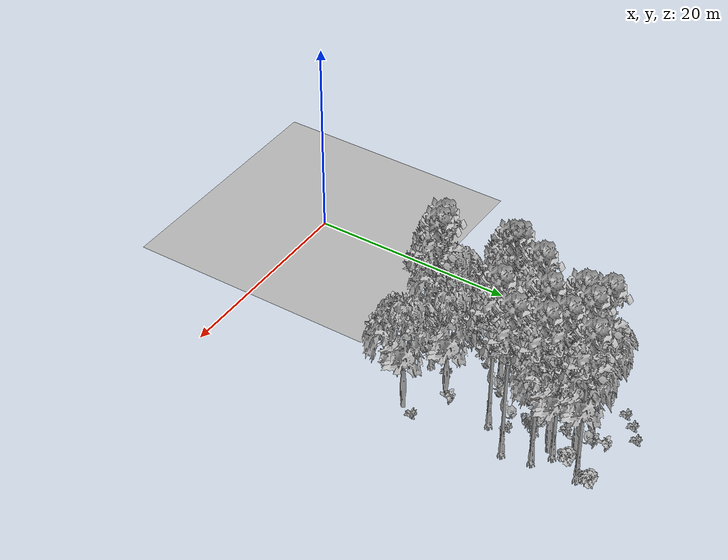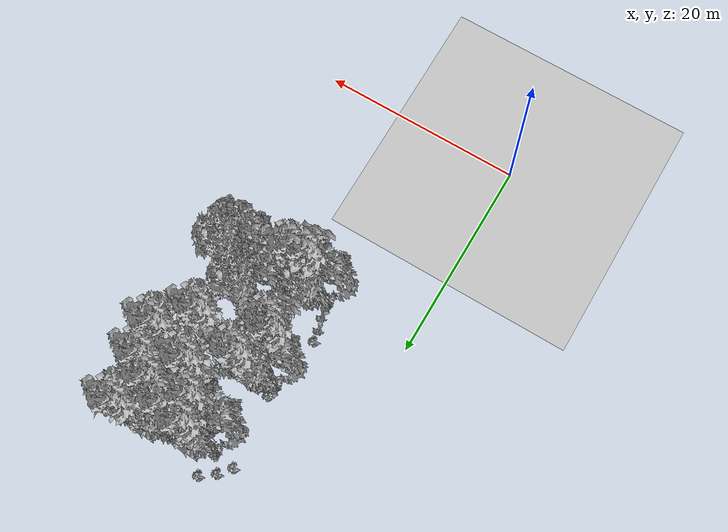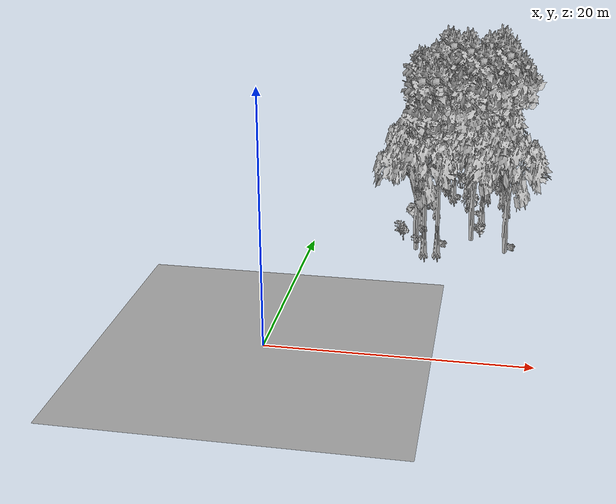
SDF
<sdf version="1.7">
 <world name="default">
  <model name="ground_plane">
   <static>1</static>
   <link name="link">
    <collision name="collision">
     <pose>-50 0 0 0 -0 0</pose>
     <geometry><plane><normal>0 0 1</normal><size>80 80</size></plane></geometry>
     <surface><contact><ode><min_depth>0.01</min_depth><max_vel>0</max_vel></ode></contact></surface>
    </collision>
    <visual name="grass">
     <cast_shadows>0</cast_shadows>
     <geometry>
      <mesh>
       <scale>0.46714285714285714 0.46714285714285714 0.1</scale>
       <uri>file://grass_plane/meshes/grass_plane.dae</uri>
      </mesh>
     </geometry>
    </visual>
   </link>
  </model>
  <model name="Tree 13">
   <static>1</static>
   <pose>9.448481958813034 19.72214087842748 0 1.57079 -0 0</pose>
   <link name="link">
    <collision name="collision">
     <geometry><mesh><scale>3.5 5 3.5</scale><uri>model://tree_2/meshes/tree_2.obj</uri></mesh></geometry>
    </collision>
    <visual name="visual">
     <geometry><mesh><scale>3.5 5 3.5</scale><uri>model://tree_2/meshes/tree_2.obj</uri></mesh></geometry>
    </visual>
   </link>
  </model>
  <model name="Tree 25">
   <static>1</static>
   <pose>15.556397853560355 34.013811529760744 0 1.57079 -0 0</pose>
   <link name="link">
    <collision name="collision">
     <geometry><mesh><scale>3.5 5 3.5</scale><uri>model://tree_9/meshes/tree_9.obj</uri></mesh></geometry>
    </collision>
    <visual name="visual">
     <geometry><mesh><scale>3.5 5 3.5</scale><uri>model://tree_9/meshes/tree_9.obj</uri></mesh></geometry>
    </visual>
   </link>
  </model>
  <model name="Tree 44">
   <static>1</static>
   <pose>10.714253786453092 28.930514521983653 0 1.57079 -0 0</pose>
   <link name="link">
    <collision name="collision">
     <geometry><mesh><scale>3.5 5 3.5</scale><uri>model://tree_9/meshes/tree_9.obj</uri></mesh></geometry>
    </collision>
    <visual name="visual">
     <geometry><mesh><scale>3.5 5 3.5</scale><uri>model://tree_9/meshes/tree_9.obj</uri></mesh></geometry>
    </visual>
   </link>
  </model>
  <model name="Tree 45">
   <static>1</static>
   <pose>15.191166597170394 27.550827886717457 0 1.57079 -0 0</pose>
   <link name="link">
    <collision name="collision">
     <geometry><mesh><scale>3.5 5 3.5</scale><uri>model://tree_9/meshes/tree_9.obj</uri></mesh></geometry>
    </collision>
    <visual name="visual">
     <geometry><mesh><scale>3.5 5 3.5</scale><uri>model://tree_9/meshes/tree_9.obj</uri></mesh></geometry>
    </visual>
   </link>
  </model>
  <model name="Tree 74">
   <static>1</static>
   <pose>17.08994189921639 32.8185801995964 0 1.57079 -0 0</pose>
   <link name="link">
    <collision name="collision">
     <geometry><mesh><scale>3.5 5 3.5</scale><uri>model://tree_9/meshes/tree_9.obj</uri></mesh></geometry>
    </collision>
    <visual name="visual">
     <geometry><mesh><scale>3.5 5 3.5</scale><uri>model://tree_9/meshes/tree_9.obj</uri></mesh></geometry>
    </visual>
   </link>
  </model>
  <model name="Tree 84">
   <static>1</static>
   <pose>10.277935031347823 19.20737049617643 0 1.57079 -0 0</pose>
   <link name="link">
    <collision name="collision">
     <geometry><mesh><scale>3.5 5 3.5</scale><uri>model://tree_9/meshes/tree_9.obj</uri></mesh></geometry>
    </collision>
    <visual name="visual">
     <geometry><mesh><scale>3.5 5 3.5</scale><uri>model://tree_9/meshes/tree_9.obj</uri></mesh></geometry>
    </visual>
   </link>
  </model>
  <model name="Tree 101">
   <static>1</static>
   <pose>11.443139381103705 19.40289881253956 0 1.57079 -0 0</pose>
   <link name="link">
    <collision name="collision">
     <geometry><mesh><scale>3.5 5 3.5</scale><uri>model://tree_9/meshes/tree_9.obj</uri></mesh></geometry>
    </collision>
    <visual name="visual">
     <geometry><mesh><scale>3.5 5 3.5</scale><uri>model://tree_9/meshes/tree_9.obj</uri></mesh></geometry>
    </visual>
   </link>
  </model>
  <model name="Tree 139">
   <static>1</static>
   <pose>11.378185133968728 35.54051797445203 0 1.57079 -0 0</pose>
   <link name="link">
    <collision name="collision">
     <geometry><mesh><scale>3.5 5 3.5</scale><uri>model://tree_9/meshes/tree_9.obj</uri></mesh></geometry>
    </collision>
    <visual name="visual">
     <geometry><mesh><scale>3.5 5 3.5</scale><uri>model://tree_9/meshes/tree_9.obj</uri></mesh></geometry>
    </visual>
   </link>
  </model>
  <model name="Tree 164">
   <static>1</static>
   <pose>13.351560463200329 35.04567893480916 0 1.57079 -0 0</pose>
   <link name="link">
    <collision name="collision">
     <geometry><mesh><scale>3.5 5 3.5</scale><uri>model://tree_9/meshes/tree_9.obj</uri></mesh></geometry>
    </collision>
    <visual name="visual">
     <geometry><mesh><scale>3.5 5 3.5</scale><uri>model://tree_9/meshes/tree_9.obj</uri></mesh></geometry>
    </visual>
   </link>
  </model>
  <model name="Tree 165">
   <static>1</static>
   <pose>17.42489191251071 20.24185344403427 0 1.57079 -0 0</pose>
   <link name="link">
    <collision name="collision">
     <geometry><mesh><scale>3.5 5 3.5</scale><uri>model://tree_2/meshes/tree_2.obj</uri></mesh></geometry>
    </collision>
    <visual name="visual">
     <geometry><mesh><scale>3.5 5 3.5</scale><uri>model://tree_2/meshes/tree_2.obj</uri></mesh></geometry>
    </visual>
   </link>
  </model>
  <model name="Tree 211">
   <static>1</static>
   <pose>13.81357835904494 31.3511848711955 0 1.57079 -0 0</pose>
   <link name="link">
    <collision name="collision">
     <geometry><mesh><scale>3.5 5 3.5</scale><uri>model://tree_9/meshes/tree_9.obj</uri></mesh></geometry>
    </collision>
    <visual name="visual">
     <geometry><mesh><scale>3.5 5 3.5</scale><uri>model://tree_9/meshes/tree_9.obj</uri></mesh></geometry>
    </visual>
   </link>
  </model>
  <model name="Tree 227">
   <static>1</static>
   <pose>12.074453850891764 33.561691109124496 0 1.57079 -0 0</pose>
   <link name="link">
    <collision name="collision">
     <geometry><mesh><scale>3.5 5 3.5</scale><uri>model://tree_9/meshes/tree_9.obj</uri></mesh></geometry>
    </collision>
    <visual name="visual">
     <geometry><mesh><scale>3.5 5 3.5</scale><uri>model://tree_9/meshes/tree_9.obj</uri></mesh></geometry>
    </visual>
   </link>
  </model>
  <model name="Tree 251">
   <static>1</static>
   <pose>10.83295392222032 35.10208742425 0 1.57079 -0 0</pose>
   <link name="link">
    <collision name="collision">
     <geometry><mesh><scale>3.5 5 3.5</scale><uri>model://tree_2/meshes/tree_2.obj</uri></mesh></geometry>
    </collision>
    <visual name="visual">
     <geometry><mesh><scale>3.5 5 3.5</scale><uri>model://tree_2/meshes/tree_2.obj</uri></mesh></geometry>
    </visual>
   </link>
  </model>
  <model name="Tree 293">
   <static>1</static>
   <pose>17.603282962316946 30.219587458483105 0 1.57079 -0 0</pose>
   <link name="link">
    <collision name="collision">
     <geometry><mesh><scale>3.5 5 3.5</scale><uri>model://tree_9/meshes/tree_9.obj</uri></mesh></geometry>
    </collision>
    <visual name="visual">
     <geometry><mesh><scale>3.5 5 3.5</scale><uri>model://tree_9/meshes/tree_9.obj</uri></mesh></geometry>
    </visual>
   </link>
  </model>
  <model name="Tree 318">
   <static>1</static>
   <pose>16.738714911677675 36.95847352801496 0 1.57079 -0 0</pose>
   <link name="link">
    <collision name="collision">
     <geometry><mesh><scale>3.5 5 3.5</scale><uri>model://tree_9/meshes/tree_9.obj</uri></mesh></geometry>
    </collision>
    <visual name="visual">
     <geometry><mesh><scale>3.5 5 3.5</scale><uri>model://tree_9/meshes/tree_9.obj</uri></mesh></geometry>
    </visual>
   </link>
  </model>
  <model name="Tree 331">
   <static>1</static>
   <pose>14.305350161146663 22.670113969165214 0 1.57079 -0 0</pose>
   <link name="link">
    <collision name="collision">
     <geometry><mesh><scale>3.5 5 3.5</scale><uri>model://tree_2/meshes/tree_2.obj</uri></mesh></geometry>
    </collision>
    <visual name="visual">
     <geometry><mesh><scale>3.5 5 3.5</scale><uri>model://tree_2/meshes/tree_2.obj</uri></mesh></geometry>
    </visual>
   </link>
  </model>
  <model name="Tree 404">
   <static>1</static>
   <pose>15.409138235719183 33.48188180852168 0 1.57079 -0 0</pose>
   <link name="link">
    <collision name="collision">
     <geometry><mesh><scale>3.5 5 3.5</scale><uri>model://tree_2/meshes/tree_2.obj</uri></mesh></geometry>
    </collision>
    <visual name="visual">
     <geometry><mesh><scale>3.5 5 3.5</scale><uri>model://tree_2/meshes/tree_2.obj</uri></mesh></geometry>
    </visual>
   </link>
  </model>
  <model name="Tree 464">
   <static>1</static>
   <pose>9.37647676464833 25.98109370072075 0 1.57079 -0 0</pose>
   <link name="link">
    <collision name="collision">
     <geometry><mesh><scale>3.5 5 3.5</scale><uri>model://tree_9/meshes/tree_9.obj</uri></mesh></geometry>
    </collision>
    <visual name="visual">
     <geometry><mesh><scale>3.5 5 3.5</scale><uri>model://tree_9/meshes/tree_9.obj</uri></mesh></geometry>
    </visual>
   </link>
  </model>
  <model name="Tree 472">
   <static>1</static>
   <pose>14.743347241980963 35.669381845683034 0 1.57079 -0 0</pose>
   <link name="link">
    <collision name="collision">
     <geometry><mesh><scale>3.5 5 3.5</scale><uri>model://tree_2/meshes/tree_2.obj</uri></mesh></geometry>
    </collision>
    <visual name="visual">
     <geometry><mesh><scale>3.5 5 3.5</scale><uri>model://tree_2/meshes/tree_2.obj</uri></mesh></geometry>
    </visual>
   </link>
  </model>
  <model name="Tree 517">
   <static>1</static>
   <pose>9.473374061195166 28.03403082366991 0 1.57079 -0 0</pose>
   <link name="link">
    <collision name="collision">
     <geometry><mesh><scale>3.5 5 3.5</scale><uri>model://tree_2/meshes/tree_2.obj</uri></mesh></geometry>
    </collision>
    <visual name="visual">
     <geometry><mesh><scale>3.5 5 3.5</scale><uri>model://tree_2/meshes/tree_2.obj</uri></mesh></geometry>
    </visual>
   </link>
  </model>
  <model name="Tree 605">
   <static>1</static>
   <pose>9.677370801430584 25.480741910740207 0 1.57079 -0 0</pose>
   <link name="link">
    <collision name="collision">
     <geometry><mesh><scale>3.5 5 3.5</scale><uri>model://tree_9/meshes/tree_9.obj</uri></mesh></geometry>
    </collision>
    <visual name="visual">
     <geometry><mesh><scale>3.5 5 3.5</scale><uri>model://tree_9/meshes/tree_9.obj</uri></mesh></geometry>
    </visual>
   </link>
  </model>
  <model name="Bush 13">
   <static>1</static>
   <pose>8.693471118173385 30.036476209944766 0 1.57079 -0 0</pose>
   <link name="link">
    <collision name="collision">
     <geometry><mesh><scale>2 2 2</scale><uri>model://bush_2/meshes/bush_2.obj</uri></mesh></geometry>
     <surface><contact><collide_without_contact>false</collide_without_contact></contact></surface>
    </collision>
    <visual name="visual">
     <geometry><mesh><scale>2 2 2</scale><uri>model://bush_2/meshes/bush_2.obj</uri></mesh></geometry>
    </visual>
   </link>
  </model>
  <model name="Bush 53">
   <static>1</static>
   <pose>7.789008641501056 22.804472568564684 0 1.57079 -0 0</pose>
   <link name="link">
    <collision name="collision">
     <geometry><mesh><scale>2 2 2</scale><uri>model://bush_5/meshes/bush_5.obj</uri></mesh></geometry>
     <surface><contact><collide_without_contact>false</collide_without_contact></contact></surface>
    </collision>
    <visual name="visual">
     <geometry><mesh><scale>2 2 2</scale><uri>model://bush_5/meshes/bush_5.obj</uri></mesh></geometry>
    </visual>
   </link>
  </model>
  <model name="Bush 59">
   <static>1</static>
   <pose>15.18632992720272 23.50238021518792 0 1.57079 -0 0</pose>
   <link name="link">
    <collision name="collision">
     <geometry><mesh><scale>2 2 2</scale><uri>model://bush_0/meshes/bush_0.obj</uri></mesh></geometry>
     <surface><contact><collide_without_contact>false</collide_without_contact></contact></surface>
    </collision>
    <visual name="visual">
     <geometry><mesh><scale>2 2 2</scale><uri>model://bush_0/meshes/bush_0.obj</uri></mesh></geometry>
    </visual>
   </link>
  </model>
  <model name="Bush 75">
   <static>1</static>
   <pose>12.759954704875895 36.3489668560881 0 1.57079 -0 0</pose>
   <link name="link">
    <collision name="collision">
     <geometry><mesh><scale>2 2 2</scale><uri>model://bush_4/meshes/bush_4.obj</uri></mesh></geometry>
     <surface><contact><collide_without_contact>false</collide_without_contact></contact></surface>
    </collision>
    <visual name="visual">
     <geometry><mesh><scale>2 2 2</scale><uri>model://bush_4/meshes/bush_4.obj</uri></mesh></geometry>
    </visual>
   </link>
  </model>
  <model name="Bush 81">
   <static>1</static>
   <pose>8.716015277574833 26.62583884927278 0 1.57079 -0 0</pose>
   <link name="link">
    <collision name="collision">
     <geometry><mesh><scale>2 2 2</scale><uri>model://bush_1/meshes/bush_1.obj</uri></mesh></geometry>
     <surface><contact><collide_without_contact>false</collide_without_contact></contact></surface>
    </collision>
    <visual name="visual">
     <geometry><mesh><scale>2 2 2</scale><uri>model://bush_1/meshes/bush_1.obj</uri></mesh></geometry>
    </visual>
   </link>
  </model>
  <model name="Bush 98">
   <static>1</static>
   <pose>10.205880698613178 39.194933743840565 0 1.57079 -0 0</pose>
   <link name="link">
    <collision name="collision">
     <geometry><mesh><scale>2 2 2</scale><uri>model://bush_2/meshes/bush_2.obj</uri></mesh></geometry>
     <surface><contact><collide_without_contact>false</collide_without_contact></contact></surface>
    </collision>
    <visual name="visual">
     <geometry><mesh><scale>2 2 2</scale><uri>model://bush_2/meshes/bush_2.obj</uri></mesh></geometry>
    </visual>
   </link>
  </model>
  <model name="Bush 127">
   <static>1</static>
   <pose>13.762476295224268 30.42113518234943 0 1.57079 -0 0</pose>
   <link name="link">
    <collision name="collision">
     <geometry><mesh><scale>2 2 2</scale><uri>model://bush_4/meshes/bush_4.obj</uri></mesh></geometry>
     <surface><contact><collide_without_contact>false</collide_without_contact></contact></surface>
    </collision>
    <visual name="visual">
     <geometry><mesh><scale>2 2 2</scale><uri>model://bush_4/meshes/bush_4.obj</uri></mesh></geometry>
    </visual>
   </link>
  </model>
  <model name="Bush 131">
   <static>1</static>
   <pose>17.214470437408572 38.05666862519247 0 1.57079 -0 0</pose>
   <link name="link">
    <collision name="collision">
     <geometry><mesh><scale>2 2 2</scale><uri>model://bush_1/meshes/bush_1.obj</uri></mesh></geometry>
     <surface><contact><collide_without_contact>false</collide_without_contact></contact></surface>
    </collision>
    <visual name="visual">
     <geometry><mesh><scale>2 2 2</scale><uri>model://bush_1/meshes/bush_1.obj</uri></mesh></geometry>
    </visual>
   </link>
  </model>
  <model name="Bush 198">
   <static>1</static>
   <pose>14.324408194504343 31.249212843826527 0 1.57079 -0 0</pose>
   <link name="link">
    <collision name="collision">
     <geometry><mesh><scale>2 2 2</scale><uri>model://bush_4/meshes/bush_4.obj</uri></mesh></geometry>
     <surface><contact><collide_without_contact>false</collide_without_contact></contact></surface>
    </collision>
    <visual name="visual">
     <geometry><mesh><scale>2 2 2</scale><uri>model://bush_4/meshes/bush_4.obj</uri></mesh></geometry>
    </visual>
   </link>
  </model>
  <model name="Bush 218">
   <static>1</static>
   <pose>13.868373057613276 35.23216285190932 0 1.57079 -0 0</pose>
   <link name="link">
    <collision name="collision">
     <geometry><mesh><scale>2 2 2</scale><uri>model://bush_0/meshes/bush_0.obj</uri></mesh></geometry>
     <surface><contact><collide_without_contact>false</collide_without_contact></contact></surface>
    </collision>
    <visual name="visual">
     <geometry><mesh><scale>2 2 2</scale><uri>model://bush_0/meshes/bush_0.obj</uri></mesh></geometry>
    </visual>
   </link>
  </model>
  <model name="Bush 252">
   <static>1</static>
   <pose>14.855576416926247 29.10020677569767 0 1.57079 -0 0</pose>
   <link name="link">
    <collision name="collision">
     <geometry><mesh><scale>2 2 2</scale><uri>model://bush_2/meshes/bush_2.obj</uri></mesh></geometry>
     <surface><contact><collide_without_contact>false</collide_without_contact></contact></surface>
    </collision>
    <visual name="visual">
     <geometry><mesh><scale>2 2 2</scale><uri>model://bush_2/meshes/bush_2.obj</uri></mesh></geometry>
    </visual>
   </link>
  </model>
  <model name="Bush 293">
   <static>1</static>
   <pose>9.674315073179585 19.694089555659218 0 1.57079 -0 0</pose>
   <link name="link">
    <collision name="collision">
     <geometry><mesh><scale>2 2 2</scale><uri>model://bush_5/meshes/bush_5.obj</uri></mesh></geometry>
     <surface><contact><collide_without_contact>false</collide_without_contact></contact></surface>
    </collision>
    <visual name="visual">
     <geometry><mesh><scale>2 2 2</scale><uri>model://bush_5/meshes/bush_5.obj</uri></mesh></geometry>
    </visual>
   </link>
  </model>
  <model name="Bush 296">
   <static>1</static>
   <pose>9.828077476563514 29.788771489348377 0 1.57079 -0 0</pose>
   <link name="link">
    <collision name="collision">
     <geometry><mesh><scale>2 2 2</scale><uri>model://bush_4/meshes/bush_4.obj</uri></mesh></geometry>
     <surface><contact><collide_without_contact>false</collide_without_contact></contact></surface>
    </collision>
    <visual name="visual">
     <geometry><mesh><scale>2 2 2</scale><uri>model://bush_4/meshes/bush_4.obj</uri></mesh></geometry>
    </visual>
   </link>
  </model>
  <model name="Bush 297">
   <static>1</static>
   <pose>17.407216188884746 38.00497915097475 0 1.57079 -0 0</pose>
   <link name="link">
    <collision name="collision">
     <geometry><mesh><scale>2 2 2</scale><uri>model://bush_5/meshes/bush_5.obj</uri></mesh></geometry>
     <surface><contact><collide_without_contact>false</collide_without_contact></contact></surface>
    </collision>
    <visual name="visual">
     <geometry><mesh><scale>2 2 2</scale><uri>model://bush_5/meshes/bush_5.obj</uri></mesh></geometry>
    </visual>
   </link>
  </model>
  <model name="Bush 318">
   <static>1</static>
   <pose>7.8585050094923545 37.03598087014433 0 1.57079 -0 0</pose>
   <link name="link">
    <collision name="collision">
     <geometry><mesh><scale>2 2 2</scale><uri>model://bush_2/meshes/bush_2.obj</uri></mesh></geometry>
     <surface><contact><collide_without_contact>false</collide_without_contact></contact></surface>
    </collision>
    <visual name="visual">
     <geometry><mesh><scale>2 2 2</scale><uri>model://bush_2/meshes/bush_2.obj</uri></mesh></geometry>
    </visual>
   </link>
  </model>
  <model name="Bush 339">
   <static>1</static>
   <pose>7.73792243102347 23.636333654910196 0 1.57079 -0 0</pose>
   <link name="link">
    <collision name="collision">
     <geometry><mesh><scale>2 2 2</scale><uri>model://bush_2/meshes/bush_2.obj</uri></mesh></geometry>
     <surface><contact><collide_without_contact>false</collide_without_contact></contact></surface>
    </collision>
    <visual name="visual">
     <geometry><mesh><scale>2 2 2</scale><uri>model://bush_2/meshes/bush_2.obj</uri></mesh></geometry>
    </visual>
   </link>
  </model>
  <model name="Bush 387">
   <static>1</static>
   <pose>8.176732134477874 21.639014189467915 0 1.57079 -0 0</pose>
   <link name="link">
    <collision name="collision">
     <geometry><mesh><scale>2 2 2</scale><uri>model://bush_5/meshes/bush_5.obj</uri></mesh></geometry>
     <surface><contact><collide_without_contact>false</collide_without_contact></contact></surface>
    </collision>
    <visual name="visual">
     <geometry><mesh><scale>2 2 2</scale><uri>model://bush_5/meshes/bush_5.obj</uri></mesh></geometry>
    </visual>
   </link>
  </model>
  <model name="Bush 392">
   <static>1</static>
   <pose>8.848342682257083 38.20072915313719 0 1.57079 -0 0</pose>
   <link name="link">
    <collision name="collision">
     <geometry><mesh><scale>2 2 2</scale><uri>model://bush_2/meshes/bush_2.obj</uri></mesh></geometry>
     <surface><contact><collide_without_contact>false</collide_without_contact></contact></surface>
    </collision>
    <visual name="visual">
     <geometry><mesh><scale>2 2 2</scale><uri>model://bush_2/meshes/bush_2.obj</uri></mesh></geometry>
    </visual>
   </link>
  </model>
  <model name="Bush 411">
   <static>1</static>
   <pose>12.894214161244825 37.5918058432419 0 1.57079 -0 0</pose>
   <link name="link">
    <collision name="collision">
     <geometry><mesh><scale>2 2 2</scale><uri>model://bush_0/meshes/bush_0.obj</uri></mesh></geometry>
     <surface><contact><collide_without_contact>false</collide_without_contact></contact></surface>
    </collision>
    <visual name="visual">
     <geometry><mesh><scale>2 2 2</scale><uri>model://bush_0/meshes/bush_0.obj</uri></mesh></geometry>
    </visual>
   </link>
  </model>
  <model name="Bush 428">
   <static>1</static>
   <pose>15.93342955643962 35.352574491107106 0 1.57079 -0 0</pose>
   <link name="link">
    <collision name="collision">
     <geometry><mesh><scale>2 2 2</scale><uri>model://bush_1/meshes/bush_1.obj</uri></mesh></geometry>
     <surface><contact><collide_without_contact>false</collide_without_contact></contact></surface>
    </collision>
    <visual name="visual">
     <geometry><mesh><scale>2 2 2</scale><uri>model://bush_1/meshes/bush_1.obj</uri></mesh></geometry>
    </visual>
   </link>
  </model>
  <model name="Bush 464">
   <static>1</static>
   <pose>10.236216631775946 33.21211433967591 0 1.57079 -0 0</pose>
   <link name="link">
    <collision name="collision">
     <geometry><mesh><scale>2 2 2</scale><uri>model://bush_0/meshes/bush_0.obj</uri></mesh></geometry>
     <surface><contact><collide_without_contact>false</collide_without_contact></contact></surface>
    </collision>
    <visual name="visual">
     <geometry><mesh><scale>2 2 2</scale><uri>model://bush_0/meshes/bush_0.obj</uri></mesh></geometry>
    </visual>
   </link>
  </model>
  <model name="Bush 513">
   <static>1</static>
   <pose>11.721143511811995 21.15895748279322 0 1.57079 -0 0</pose>
   <link name="link">
    <collision name="collision">
     <geometry><mesh><scale>2 2 2</scale><uri>model://bush_2/meshes/bush_2.obj</uri></mesh></geometry>
     <surface><contact><collide_without_contact>false</collide_without_contact></contact></surface>
    </collision>
    <visual name="visual">
     <geometry><mesh><scale>2 2 2</scale><uri>model://bush_2/meshes/bush_2.obj</uri></mesh></geometry>
    </visual>
   </link>
  </model>
  <model name="Bush 575">
   <static>1</static>
   <pose>17.93361083434521 21.373587088865698 0 1.57079 -0 0</pose>
   <link name="link">
    <collision name="collision">
     <geometry><mesh><scale>2 2 2</scale><uri>model://bush_2/meshes/bush_2.obj</uri></mesh></geometry>
     <surface><contact><collide_without_contact>false</collide_without_contact></contact></surface>
    </collision>
    <visual name="visual">
     <geometry><mesh><scale>2 2 2</scale><uri>model://bush_2/meshes/bush_2.obj</uri></mesh></geometry>
    </visual>
   </link>
  </model>
  <model name="Bush 601">
   <static>1</static>
   <pose>11.417692669414684 34.000483020775675 0 1.57079 -0 0</pose>
   <link name="link">
    <collision name="collision">
     <geometry><mesh><scale>2 2 2</scale><uri>model://bush_4/meshes/bush_4.obj</uri></mesh></geometry>
     <surface><contact><collide_without_contact>false</collide_without_contact></contact></surface>
    </collision>
    <visual name="visual">
     <geometry><mesh><scale>2 2 2</scale><uri>model://bush_4/meshes/bush_4.obj</uri></mesh></geometry>
    </visual>
   </link>
  </model>
  <model name="Bush 608">
   <static>1</static>
   <pose>12.35565443233532 33.54063555491501 0 1.57079 -0 0</pose>
   <link name="link">
    <collision name="collision">
     <geometry><mesh><scale>2 2 2</scale><uri>model://bush_2/meshes/bush_2.obj</uri></mesh></geometry>
     <surface><contact><collide_without_contact>false</collide_without_contact></contact></surface>
    </collision>
    <visual name="visual">
     <geometry><mesh><scale>2 2 2</scale><uri>model://bush_2/meshes/bush_2.obj</uri></mesh></geometry>
    </visual>
   </link>
  </model>
 </world>
</sdf>
